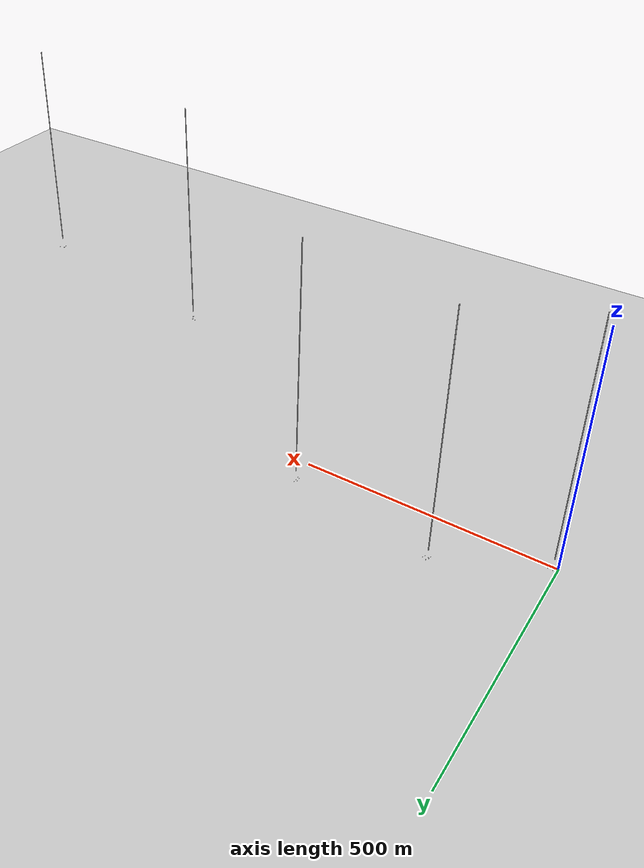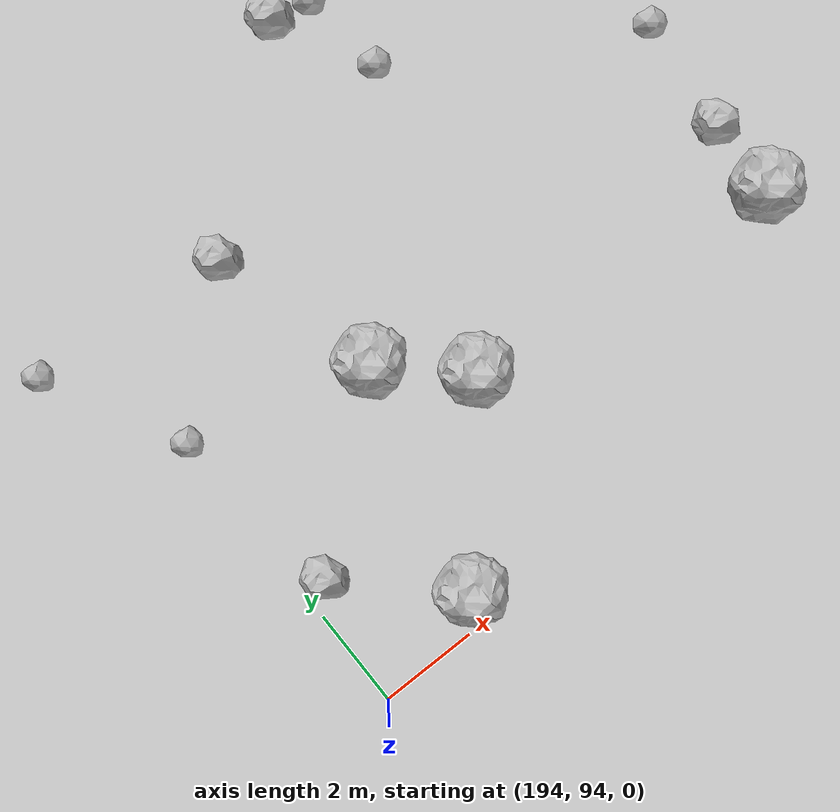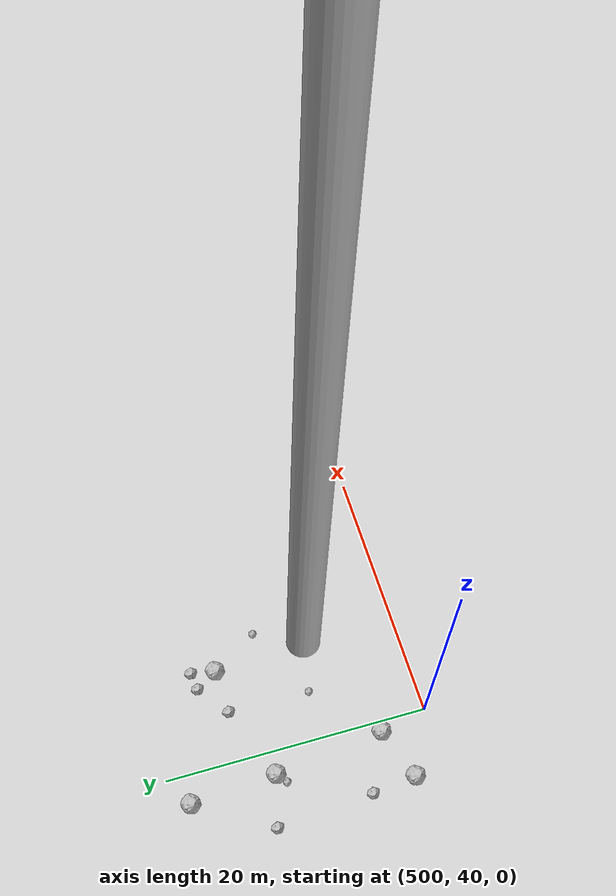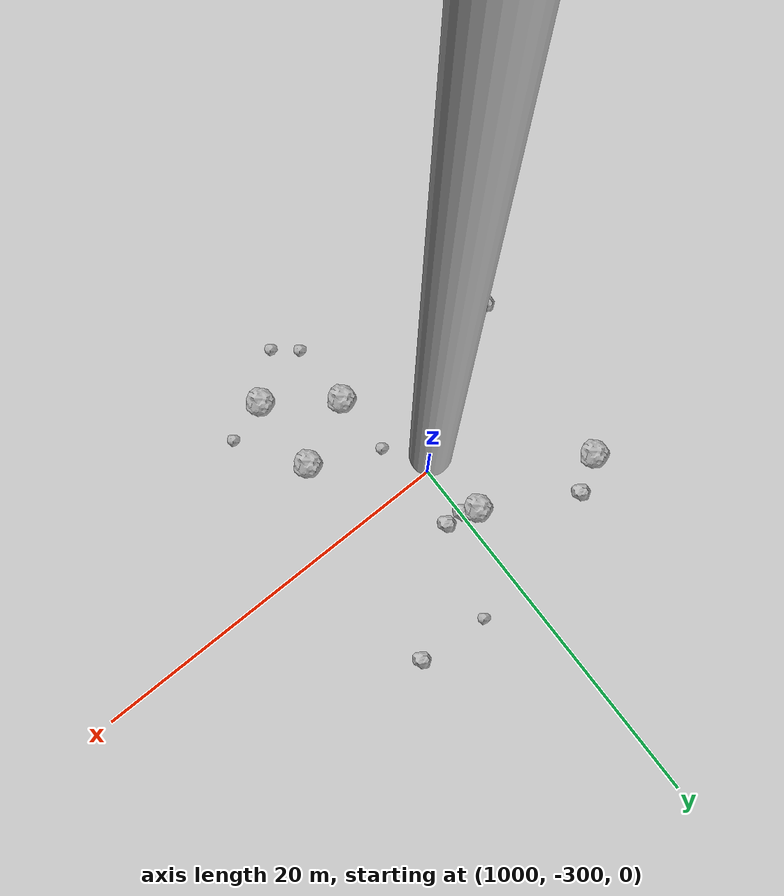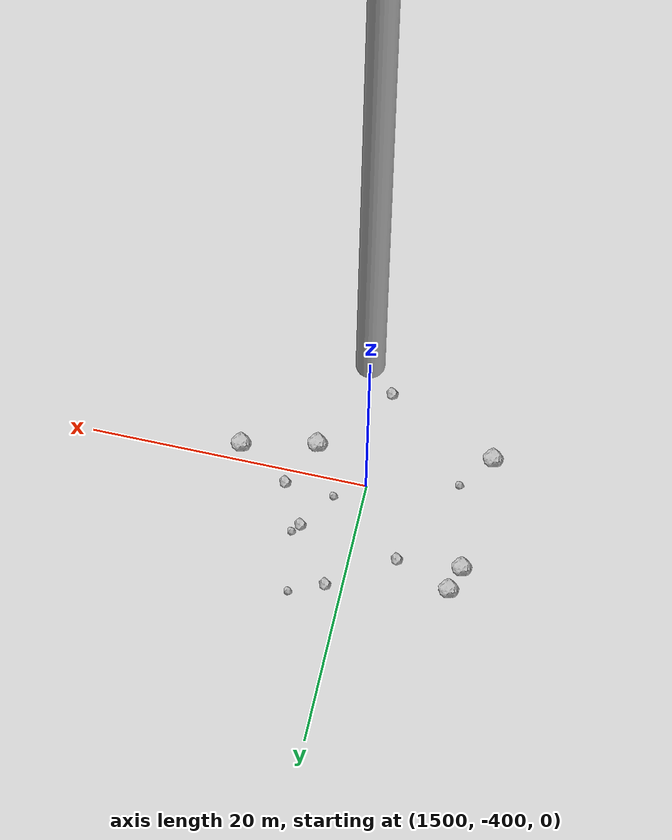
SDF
<?xml version="1.0" ?>
<sdf version="1.6">
  <world name="default">

    <include>
      <uri>model://custom_ground</uri>
    </include>

    <include>
      <uri>model://sun</uri>
    </include>

    <spherical_coordinates>
      <surface_model>EARTH_WGS84</surface_model>
      <latitude_deg>38.161479</latitude_deg>
      <longitude_deg>-122.454630</longitude_deg>
      <elevation>488.0</elevation>
      <heading_deg>90</heading_deg>
    </spherical_coordinates>

    <model name="rock1_0_0">
      <include>
        <uri>model://rock1</uri>
        <pose>16.76129849104284 0.17035210576093718 0.5 0 0 0</pose>
      </include>
    </model>
    <model name="rock1_0_1">
      <include>
        <uri>model://rock1</uri>
        <pose>3.91581883259694 6.048563750667022 0.5 0 0 0</pose>
      </include>
    </model>
    <model name="rock1_0_2">
      <include>
        <uri>model://rock1</uri>
        <pose>3.1535498352605495 5.877548606487654 0.5 0 0 0</pose>
      </include>
    </model>
    <model name="rock1_0_3">
      <include>
        <uri>model://rock1</uri>
        <pose>6.360825260456647 -6.894744570022604 0.5 0 0 0</pose>
      </include>
    </model>
    <model name="rock1_0_4">
      <include>
        <uri>model://rock1</uri>
        <pose>17.350470856578205 6.461479781443877 0.5 0 0 0</pose>
      </include>
    </model>
    <model name="rock2_0_0">
      <include>
        <uri>model://rock2</uri>
        <pose>6.493660217698554 -6.794830868857835 0.3 0 0 0</pose>
      </include>
    </model>
    <model name="rock2_0_1">
      <include>
        <uri>model://rock2</uri>
        <pose>17.430855039459324 -1.4101644172420507 0.3 0 0 0</pose>
      </include>
    </model>
    <model name="rock2_0_2">
      <include>
        <uri>model://rock2</uri>
        <pose>7.442410224433759 3.428305433014911 0.3 0 0 0</pose>
      </include>
    </model>
    <model name="rock2_0_3">
      <include>
        <uri>model://rock2</uri>
        <pose>9.184406261916383 7.362744130049602 0.3 0 0 0</pose>
      </include>
    </model>
    <model name="rock2_0_4">
      <include>
        <uri>model://rock2</uri>
        <pose>4.941634364768235 8.448945693741642 0.3 0 0 0</pose>
      </include>
    </model>
    <model name="rock3_0_0">
      <include>
        <uri>model://rock3</uri>
        <pose>15.164249120192366 -2.3886054111632387 0.2 0 0 0</pose>
      </include>
    </model>
    <model name="rock3_0_1">
      <include>
        <uri>model://rock3</uri>
        <pose>19.105563431636988 2.102931582601764 0.2 0 0 0</pose>
      </include>
    </model>
    <model name="rock3_0_2">
      <include>
        <uri>model://rock3</uri>
        <pose>7.58568987897579 7.119740552750063 0.2 0 0 0</pose>
      </include>
    </model>
    <model name="rock3_0_3">
      <include>
        <uri>model://rock3</uri>
        <pose>8.756877208451407 3.0039716696516088 0.2 0 0 0</pose>
      </include>
    </model>
    <model name="rock3_0_4">
      <include>
        <uri>model://rock3</uri>
        <pose>11.808521154617207 7.29104069960805 0.2 0 0 0</pose>
      </include>
    </model>
    <model name="rock1_1_0">
      <include>
        <uri>model://rock1</uri>
        <pose>205.76859347433776 97.26915617191105 0.5 0 0 0</pose>
      </include>
    </model>
    <model name="rock1_1_1">
      <include>
        <uri>model://rock1</uri>
        <pose>196.60041148177856 94.71823168940332 0.5 0 0 0</pose>
      </include>
    </model>
    <model name="rock1_1_2">
      <include>
        <uri>model://rock1</uri>
        <pose>199.2759455736194 97.92369586519949 0.5 0 0 0</pose>
      </include>
    </model>
    <model name="rock1_1_3">
      <include>
        <uri>model://rock1</uri>
        <pose>197.78990735055172 99.31127144051624 0.5 0 0 0</pose>
      </include>
    </model>
    <model name="rock1_1_4">
      <include>
        <uri>model://rock1</uri>
        <pose>208.64670765968927 101.85578353071833 0.5 0 0 0</pose>
      </include>
    </model>
    <model name="rock2_1_0">
      <include>
        <uri>model://rock2</uri>
        <pose>196.70616076314704 102.67194249456693 0.3 0 0 0</pose>
      </include>
    </model>
    <model name="rock2_1_1">
      <include>
        <uri>model://rock2</uri>
        <pose>200.35626332586043 105.71743002959337 0.3 0 0 0</pose>
      </include>
    </model>
    <model name="rock2_1_2">
      <include>
        <uri>model://rock2</uri>
        <pose>204.33069848776438 91.28310211282282 0.3 0 0 0</pose>
      </include>
    </model>
    <model name="rock2_1_3">
      <include>
        <uri>model://rock2</uri>
        <pose>205.80506421415 98.80622443355654 0.3 0 0 0</pose>
      </include>
    </model>
    <model name="rock2_1_4">
      <include>
        <uri>model://rock2</uri>
        <pose>194.51981626281943 96.61444292941256 0.3 0 0 0</pose>
      </include>
    </model>
    <model name="rock3_1_0">
      <include>
        <uri>model://rock3</uri>
        <pose>201.14925623499815 105.49504068165234 0.2 0 0 0</pose>
      </include>
    </model>
    <model name="rock3_1_1">
      <include>
        <uri>model://rock3</uri>
        <pose>201.37664082200237 103.743830743941 0.2 0 0 0</pose>
      </include>
    </model>
    <model name="rock3_1_2">
      <include>
        <uri>model://rock3</uri>
        <pose>194.03984034555978 100.231691011107 0.2 0 0 0</pose>
      </include>
    </model>
    <model name="rock3_1_3">
      <include>
        <uri>model://rock3</uri>
        <pose>206.01962158289683 101.06816825042416 0.2 0 0 0</pose>
      </include>
    </model>
    <model name="rock3_1_4">
      <include>
        <uri>model://rock3</uri>
        <pose>192.57895315932086 102.99302361563838 0.2 0 0 0</pose>
      </include>
    </model>
    <model name="rock1_2_0">
      <include>
        <uri>model://rock1</uri>
        <pose>497.80679280540045 58.65983459173768 0.5 0 0 0</pose>
      </include>
    </model>
    <model name="rock1_2_1">
      <include>
        <uri>model://rock1</uri>
        <pose>498.2486319357931 52.12179669367097 0.5 0 0 0</pose>
      </include>
    </model>
    <model name="rock1_2_2">
      <include>
        <uri>model://rock1</uri>
        <pose>499.2181794074027 43.70571517928785 0.5 0 0 0</pose>
      </include>
    </model>
    <model name="rock1_2_3">
      <include>
        <uri>model://rock1</uri>
        <pose>495.3003186115966 42.381865394206756 0.5 0 0 0</pose>
      </include>
    </model>
    <model name="rock1_2_4">
      <include>
        <uri>model://rock1</uri>
        <pose>507.244206872797 54.32848836344693 0.5 0 0 0</pose>
      </include>
    </model>
    <model name="rock2_2_0">
      <include>
        <uri>model://rock2</uri>
        <pose>494.92119569487477 45.72431541456827 0.3 0 0 0</pose>
      </include>
    </model>
    <model name="rock2_2_1">
      <include>
        <uri>model://rock2</uri>
        <pose>503.8462603540663 54.17606022268909 0.3 0 0 0</pose>
      </include>
    </model>
    <model name="rock2_2_2">
      <include>
        <uri>model://rock2</uri>
        <pose>507.60153349532186 56.135436233363976 0.3 0 0 0</pose>
      </include>
    </model>
    <model name="rock2_2_3">
      <include>
        <uri>model://rock2</uri>
        <pose>506.219590311932 55.96619333252754 0.3 0 0 0</pose>
      </include>
    </model>
    <model name="rock2_2_4">
      <include>
        <uri>model://rock2</uri>
        <pose>494.4115543574511 53.10541675648889 0.3 0 0 0</pose>
      </include>
    </model>
    <model name="rock3_2_0">
      <include>
        <uri>model://rock3</uri>
        <pose>508.6253700221673 46.75018881044607 0.2 0 0 0</pose>
      </include>
    </model>
    <model name="rock3_2_1">
      <include>
        <uri>model://rock3</uri>
        <pose>503.73355272230197 47.913718678095975 0.2 0 0 0</pose>
      </include>
    </model>
    <model name="rock3_2_2">
      <include>
        <uri>model://rock3</uri>
        <pose>509.43585778591836 50.7171640935038 0.2 0 0 0</pose>
      </include>
    </model>
    <model name="rock3_2_3">
      <include>
        <uri>model://rock3</uri>
        <pose>507.5133940509537 47.99039945599743 0.2 0 0 0</pose>
      </include>
    </model>
    <model name="rock3_2_4">
      <include>
        <uri>model://rock3</uri>
        <pose>497.46741455165164 51.45646543430384 0.2 0 0 0</pose>
      </include>
    </model>
    <model name="rock1_3_0">
      <include>
        <uri>model://rock1</uri>
        <pose>1004.4472885474217 -304.02029869316533 0.5 0 0 0</pose>
      </include>
    </model>
    <model name="rock1_3_1">
      <include>
        <uri>model://rock1</uri>
        <pose>1001.1260402699762 -305.51811907854966 0.5 0 0 0</pose>
      </include>
    </model>
    <model name="rock1_3_2">
      <include>
        <uri>model://rock1</uri>
        <pose>999.1792342903017 -297.0572137148633 0.5 0 0 0</pose>
      </include>
    </model>
    <model name="rock1_3_3">
      <include>
        <uri>model://rock1</uri>
        <pose>992.9725062822015 -295.579585156161 0.5 0 0 0</pose>
      </include>
    </model>
    <model name="rock1_3_4">
      <include>
        <uri>model://rock1</uri>
        <pose>1004.3970472520954 -307.9041088918218 0.5 0 0 0</pose>
      </include>
    </model>
    <model name="rock2_3_0">
      <include>
        <uri>model://rock2</uri>
        <pose>994.6394485271494 -294.4954059204202 0.3 0 0 0</pose>
      </include>
    </model>
    <model name="rock2_3_1">
      <include>
        <uri>model://rock2</uri>
        <pose>999.8938983649642 -297.37043681881016 0.3 0 0 0</pose>
      </include>
    </model>
    <model name="rock2_3_2">
      <include>
        <uri>model://rock2</uri>
        <pose>992.5471882487238 -304.8161718356167 0.3 0 0 0</pose>
      </include>
    </model>
    <model name="rock2_3_3">
      <include>
        <uri>model://rock2</uri>
        <pose>1000.8429318637616 -297.3901497170315 0.3 0 0 0</pose>
      </include>
    </model>
    <model name="rock2_3_4">
      <include>
        <uri>model://rock2</uri>
        <pose>1006.0052659278414 -292.8572918286765 0.3 0 0 0</pose>
      </include>
    </model>
    <model name="rock3_3_0">
      <include>
        <uri>model://rock3</uri>
        <pose>1002.2914789781237 -292.5984109267782 0.2 0 0 0</pose>
      </include>
    </model>
    <model name="rock3_3_1">
      <include>
        <uri>model://rock3</uri>
        <pose>1001.0206966842014 -302.36924414315905 0.2 0 0 0</pose>
      </include>
    </model>
    <model name="rock3_3_2">
      <include>
        <uri>model://rock3</uri>
        <pose>1006.5624944449985 -307.25777369259777 0.2 0 0 0</pose>
      </include>
    </model>
    <model name="rock3_3_3">
      <include>
        <uri>model://rock3</uri>
        <pose>1001.1968866579592 -308.7327851804023 0.2 0 0 0</pose>
      </include>
    </model>
    <model name="rock3_3_4">
      <include>
        <uri>model://rock3</uri>
        <pose>1002.3068650970317 -309.6586653237 0.2 0 0 0</pose>
      </include>
    </model>
    <model name="rock1_4_0">
      <include>
        <uri>model://rock1</uri>
        <pose>1492.0192756179963 -395.1751037323836 0.5 0 0 0</pose>
      </include>
    </model>
    <model name="rock1_4_1">
      <include>
        <uri>model://rock1</uri>
        <pose>1491.5935979120648 -403.9656994098476 0.5 0 0 0</pose>
      </include>
    </model>
    <model name="rock1_4_2">
      <include>
        <uri>model://rock1</uri>
        <pose>1509.442071845567 -401.17341017636255 0.5 0 0 0</pose>
      </include>
    </model>
    <model name="rock1_4_3">
      <include>
        <uri>model://rock1</uri>
        <pose>1504.0977227690505 -402.37002578704136 0.5 0 0 0</pose>
      </include>
    </model>
    <model name="rock1_4_4">
      <include>
        <uri>model://rock1</uri>
        <pose>1492.5756790923676 -393.31809853545167 0.5 0 0 0</pose>
      </include>
    </model>
    <model name="rock2_4_0">
      <include>
        <uri>model://rock2</uri>
        <pose>1496.647963584173 -394.84863156008925 0.3 0 0 0</pose>
      </include>
    </model>
    <model name="rock2_4_1">
      <include>
        <uri>model://rock2</uri>
        <pose>1503.9059389122738 -395.96356931765905 0.3 0 0 0</pose>
      </include>
    </model>
    <model name="rock2_4_2">
      <include>
        <uri>model://rock2</uri>
        <pose>1501.1913077366282 -391.844960759702 0.3 0 0 0</pose>
      </include>
    </model>
    <model name="rock2_4_3">
      <include>
        <uri>model://rock2</uri>
        <pose>1499.725632435711 -407.46892363961064 0.3 0 0 0</pose>
      </include>
    </model>
    <model name="rock2_4_4">
      <include>
        <uri>model://rock2</uri>
        <pose>1505.6888793101596 -398.96287412562526 0.3 0 0 0</pose>
      </include>
    </model>
    <model name="rock3_4_0">
      <include>
        <uri>model://rock3</uri>
        <pose>1503.616074038683 -390.81213428805916 0.2 0 0 0</pose>
      </include>
    </model>
    <model name="rock3_4_1">
      <include>
        <uri>model://rock3</uri>
        <pose>1502.0670935971455 -398.71714249573006 0.2 0 0 0</pose>
      </include>
    </model>
    <model name="rock3_4_2">
      <include>
        <uri>model://rock3</uri>
        <pose>1509.1377732786702 -401.08464216035554 0.2 0 0 0</pose>
      </include>
    </model>
    <model name="rock3_4_3">
      <include>
        <uri>model://rock3</uri>
        <pose>1493.485663952158 -401.5463465004667 0.2 0 0 0</pose>
      </include>
    </model>
    <model name="rock3_4_4">
      <include>
        <uri>model://rock3</uri>
        <pose>1504.390782329874 -395.3821830879536 0.2 0 0 0</pose>
      </include>
    </model>

    <model name="cylinder_1">
      <static>true</static>
      <link name="link">
        <visual name="visual">
          <geometry>
            <cylinder>
              <radius>1</radius>
              <length>500</length>
            </cylinder>
          </geometry>
        </visual>
      </link>
      <pose>10 0 270 0 0 0</pose>
    </model>

    <model name="cylinder_2">
      <static>true</static>
      <link name="link">
        <visual name="visual">
          <geometry>
            <cylinder>
              <radius>1</radius>
              <length>500</length>
            </cylinder>
          </geometry>
        </visual>
      </link>
      <pose>200 100 270 0 0 0</pose>
    </model>

    <model name="cylinder_3">
      <static>true</static>
      <link name="link">
        <visual name="visual">
          <geometry>
            <cylinder>
              <radius>1</radius>
              <length>500</length>
            </cylinder>
          </geometry>
        </visual>
      </link>
      <pose>500 50 270 0 0 0</pose>
    </model>

    <model name="cylinder_4">
      <static>true</static>
      <link name="link">
        <visual name="visual">
          <geometry>
            <cylinder>
              <radius>1</radius>
              <length>500</length>
            </cylinder>
          </geometry>
        </visual>
      </link>
      <pose>1000 -300 270 0 0 0</pose>
    </model>

    <model name="cylinder_5">
      <static>true</static>
      <link name="link">
        <visual name="visual">
          <geometry>
            <cylinder>
              <radius>1</radius>
              <length>500</length>
            </cylinder>
          </geometry>
        </visual>
      </link>
      <pose>1500 -400 270 0 0 0</pose>
    </model>

  </world>
</sdf>

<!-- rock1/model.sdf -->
<sdf version="1.6">
  <model name="rock1">
    <static>true</static> <!-- Set to true if the model should not move -->
    <pose>0 0 0 0 0 0</pose>

    <!--z offset is 0.5 for full scale-->

    <link name="link">
      <collision name="rock1_collision">
        <geometry>
          <mesh>
            <uri>model://meshes/rock1.dae</uri>
          </mesh>
        </geometry>
      </collision>
      <visual name="rock1_visual">
        <geometry>
          <mesh>
            <uri>model://meshes/rock1.dae</uri>
          </mesh>
        </geometry>
        <material>
          <script>
            <uri>model://materials/scripts/sand_pebbles.material</uri>
            <name>custom_ground/Image</name>
          </script>
        </material>
      </visual>
    </link>
  </model>
</sdf>

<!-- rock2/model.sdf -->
<sdf version="1.6">
  <model name="rock2">
    <static>true</static> <!-- Set to true if the model should not move -->
    <pose>0 0 0 0 0 0</pose>

    <!--z offset is 0.3 for full scale-->

    <link name="link">
      <collision name="rock2_collision">
        <geometry>
          <mesh>
            <uri>model://meshes/rock2.dae</uri>
          </mesh>
        </geometry>
      </collision>
      <visual name="rock2_visual">
        <geometry>
          <mesh>
            <uri>model://meshes/rock2.dae</uri>
          </mesh>
        </geometry>
        <material>
          <script>
            <uri>model://materials/scripts/sand_pebbles.material</uri>
            <name>custom_ground/Image</name>
          </script>
        </material>
      </visual>
    </link>
  </model>
</sdf>

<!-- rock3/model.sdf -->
<sdf version="1.6">
  <model name="rock3">
    <static>true</static> <!-- Set to true if the model should not move -->
    <pose>0 0 0 0 0 0</pose>

    <!--z offset is 0.2 for full scale-->

    <link name="link">
      <collision name="rock3_collision">
        <geometry>
          <mesh>
            <uri>model://meshes/rock3.dae</uri>
          </mesh>
        </geometry>
      </collision>
      <visual name="rock3_visual">
        <geometry>
          <mesh>
            <uri>model://meshes/rock3.dae</uri>
          </mesh>
        </geometry>
        <material>
          <script>
            <uri>model://materials/scripts/sand_pebbles.material</uri>
            <name>custom_ground/Image</name>
          </script>
        </material>
      </visual>
    </link>
  </model>
</sdf>

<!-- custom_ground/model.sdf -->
<sdf version="1.6">
  <model name="custom_ground">
    <static>true</static> <!-- Ground is static and immovable -->
    <link name="ground_link">
      <pose>240 0 0 0 0 0</pose> <!-- Position and orientation relative to the world -->
      <!-- Visual Representation -->
      <visual name="ground_visual">
        <geometry>
          <plane>
            <normal>0 0 1</normal> <!-- Upward facing plane -->
            <size>500 500</size> <!-- Size of the plane -->
          </plane>
        </geometry>
        <material>
          <script>
            <uri>model://materials/scripts/sand_pebbles.material</uri>
            <name>custom_ground/Image</name>
          </script>
        </material>
      </visual>

      <!-- Collision Representation -->
      <collision name="ground_collision">
        <geometry>
          <plane>
            <normal>0 0 1</normal>
            <size>100 100</size>
          </plane>
        </geometry>
      </collision>

    </link>
  </model>
</sdf>
